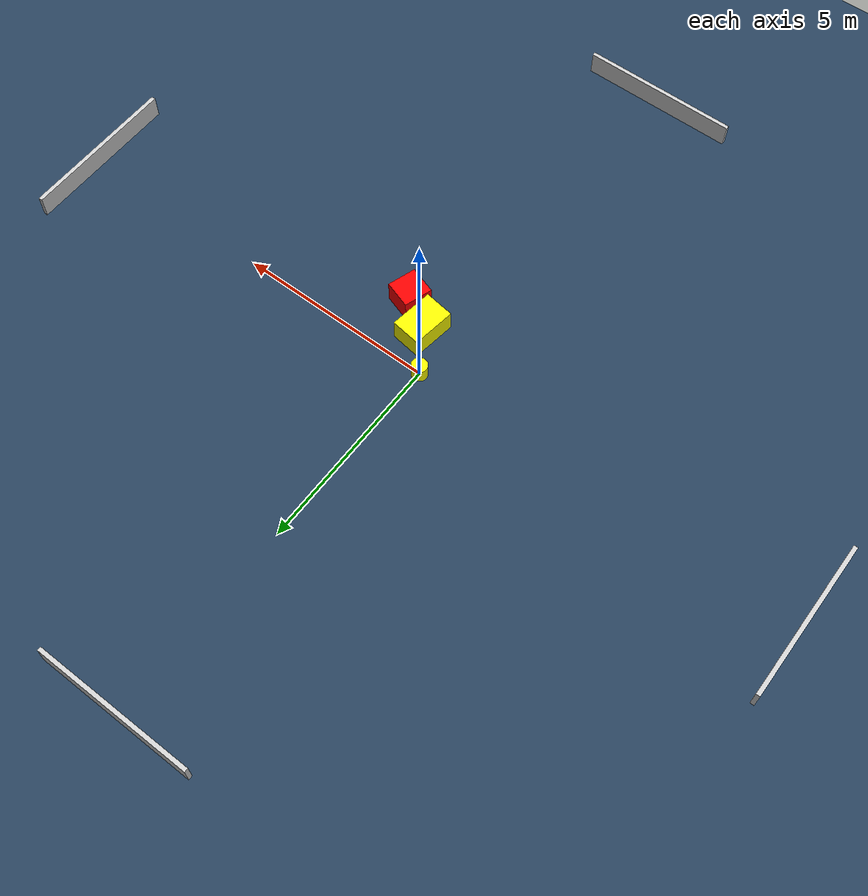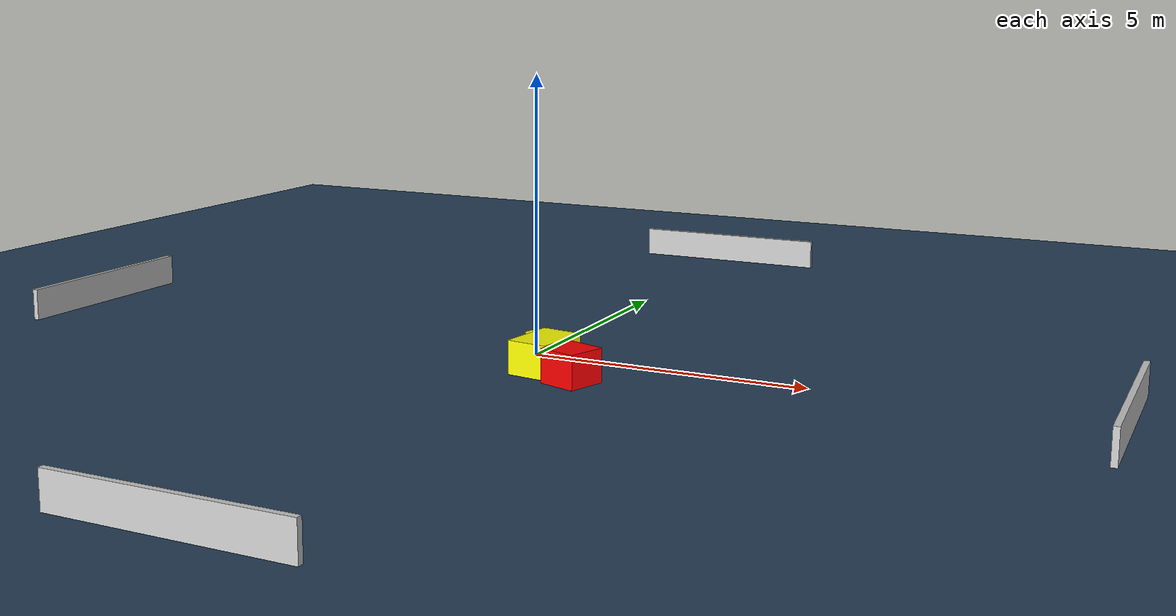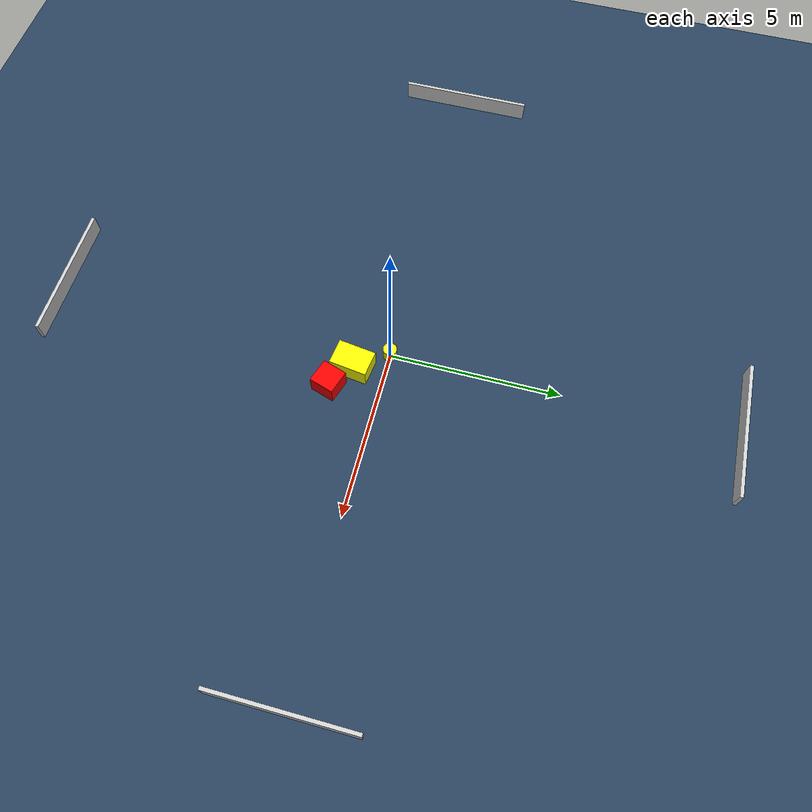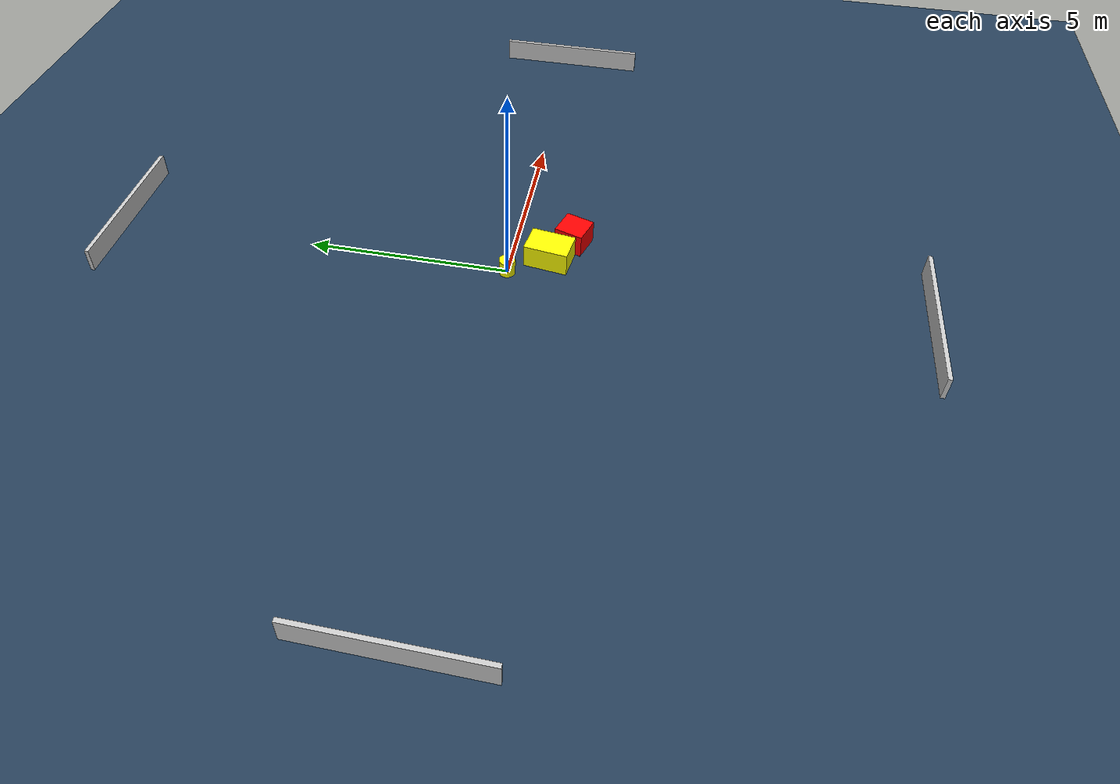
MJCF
<?xml version="1.0" ?>
<mujoco model="generated_environment">
  <option timestep="0.01" integrator="RK4" cone="elliptic"/>
  <default>
    <geom density="1"/>
  </default>
  <asset>
    <texture builtin="gradient" height="3072" name="skybox" rgb1="0.3 0.5 0.7" rgb2="0 0 0" type="skybox" width="512"/>
    <texture builtin="checker" height="300" name="groundplane" rgb1="0.2 0.3 0.4" rgb2="0.1 0.2 0.3" type="2d" width="300"/>
    <material name="groundplane" reflectance="0.2" texrepeat="5 5" texture="groundplane"/>
  </asset>
  <worldbody>
    <light dir="0 0 -1" directional="true" pos="0 0 1.5"/>
    <geom condim="3" friction="0.5 0.005 0.001" material="groundplane" name="floor" pos="0 0 0" size="0 0 0.05" type="plane"/>
    <body name="walls">
      <geom name="wall_1" condim="4" pos="-10.0 0.0 0.3" rgba="0.800000011920929 0.800000011920929 0.800000011920929 1.0" size="0.05 2.0 0.3" type="box"/>
      <geom name="wall_2" condim="4" pos="10.0 0.0 0.3" rgba="0.800000011920929 0.800000011920929 0.800000011920929 1.0" size="0.05 2.0 0.3" type="box"/>
      <geom name="wall_3" condim="4" pos="0.0 -10.0 0.3" rgba="0.800000011920929 0.800000011920929 0.800000011920929 1.0" size="2.0 0.05 0.3" type="box"/>
      <geom name="wall_4" condim="4" pos="0.0 10.0 0.3" rgba="0.800000011920929 0.800000011920929 0.800000011920929 1.0" size="2.0 0.05 0.3" type="box"/>
    </body>
    <body name="robot">
      <joint name="joint_x" type="slide" pos="0 0 0" axis="1 0 0"/>
      <joint name="joint_y" type="slide" pos="0 0 0" axis="0 1 0"/>
      <geom name="robot" type="cylinder" pos="0.0 0.0 0.2" size="0.2 0.2 0.0" mass="5.0" friction="1.0 0.005 0.0001" condim="4" rgba="1.0 1.0 0.0 1.0"/>
    </body>
    <body name="obstacle_1_movable">
      <geom name="obstacle_1_movable" condim="4" pos="0.6295374612026955 -0.9330663921221174 0.3" euler="0 0 172.2039567677363" friction="0.0 0.005 0.001" rgba="1.0 1.0 0.0 1.0" size="0.375546187141831 0.5509051549634001 0.3" type="box" mass="0.1"/>
      <joint type="free"/>
    </body>
    <body name="obstacle_2_static">
      <geom name="obstacle_2_static" condim="4" pos="1.3778929255523615 -1.429700675941375 0.3" euler="0 0 341.92994064359095" friction="0.0 0.005 0.001" rgba="1.0 0.0 0.0 1.0" size="0.35205127253543855 0.36406556874789087 0.3" type="box"/>
    </body>
  </worldbody>
  <actuator>
    <motor name="actuator_x" joint="joint_x" gear="1" ctrlrange="-1 1"/>
    <motor name="actuator_y" joint="joint_y" gear="1" ctrlrange="-1 1"/>
  </actuator>
</mujoco>
